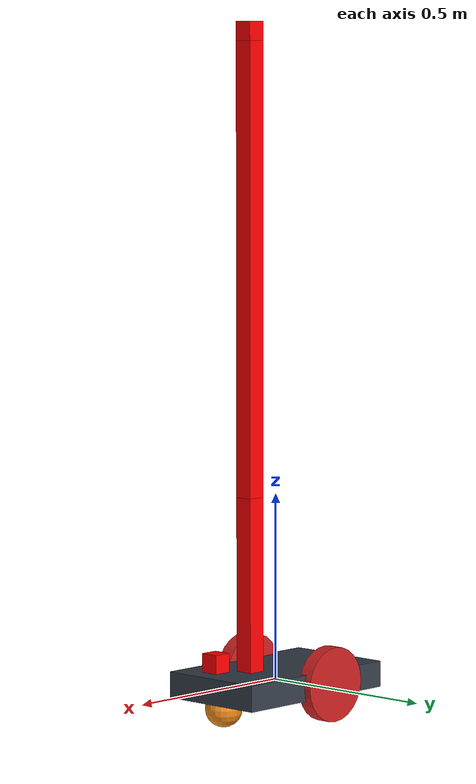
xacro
<?xml version="1.0"?>
<robot xmlns:xacro="http://www.ros.org/wiki/xacro" name="robot_camera_laser">
<xacro:include filename="$(find assignment_1)/urdf/robot2.gazebo"/>

	<xacro:property name="length_wheel" value="0.04" />
	<xacro:property name="radius_wheel" value="0.1" />

	<xacro:macro name="default_inertial" params="mass">
               <inertial>
                       <mass value="${mass}" />
                       <origin rpy="0 1.5707 1.5707" xyz="0 0 0"/>
                       <inertia ixx="0.000526666666667" ixy="0" ixz="0" iyy="0.000526666666667" iyz="0" izz="0.001"/>
               </inertial>
	</xacro:macro>

    <xacro:macro name="wheel_geometry">
		<geometry>
       			<cylinder length="${length_wheel}" radius="${radius_wheel}"/>
     	</geometry>
	</xacro:macro>

  <material name="black">
    <color rgba="0.0 0.0 0.0 1.0"/>
  </material>
  <material name="blue">
    <color rgba="0.203125 0.23828125 0.28515625 1.0"/>
  </material>
  <material name="green">
    <color rgba="0.0 0.8 0.0 1.0"/>
  </material>
  <material name="grey">
    <color rgba="0.2 0.2 0.2 1.0"/>
  </material>
  <material name="orange">
    <color rgba="1.0 0.423529411765 0.0392156862745 1.0"/>
  </material>
  <material name="brown">
    <color rgba="0.870588235294 0.811764705882 0.764705882353 1.0"/>
  </material>
  <material name="red">
    <color rgba="0.80078125 0.12890625 0.1328125 1.0"/>
  </material>
  <material name="white">
    <color rgba="1.0 1.0 1.0 1.0"/>
  </material>

	  <link name="link_chassis">
    <!-- pose and inertial -->
    <pose>0 0 0.1 0 0 0</pose>
    <inertial>
      <mass value="5"/>
      <origin rpy="0 0 0" xyz="0 0 0.1"/>
      <inertia ixx="0.0395416666667" ixy="0" ixz="0" iyy="0.106208333333" iyz="0" izz="0.106208333333"/>
    </inertial>
    <!-- body -->
    <collision name="collision_chassis">
      <geometry>
        <box size="0.5 0.3 0.07"/>
      </geometry>
    </collision>
    <visual>
      <origin rpy="0 0 0" xyz="0 0 0"/>
      <geometry>
        <box size="0.5 0.3 0.07"/>
      </geometry>
      <material name="blue"/>
    </visual>
    <!-- caster front -->
    <collision name="caster_front_collision">
      <origin rpy=" 0 0 0" xyz="0.35 0 -0.05"/>
      <geometry>
        <sphere radius="0.05"/>
      </geometry>
    </collision>
    <visual name="caster_front_visual">
      <origin rpy=" 0 0 0" xyz="0.2 0 -0.05"/>
      <geometry>
        <sphere radius="0.05"/>
      </geometry>
    </visual>

</link>

  <link name="link_right_wheel">
    <xacro:default_inertial mass="0.2"/>
    <collision name="link_right_wheel_collision">
      <origin rpy="0 1.5707 1.5707" xyz="0 0 0"/>
      <xacro:wheel_geometry />
    </collision>
    <visual name="link_right_wheel_visual">
      <origin rpy="0 1.5707 1.5707" xyz="0 0 0"/>
      <xacro:wheel_geometry />
      <material name="red"/>
    </visual>
  </link>

  <link name="link_left_wheel">
    <xacro:default_inertial mass="0.2"/>
    <collision name="link_left_wheel_collision">
      <origin rpy="0 1.5707 1.5707" xyz="0 0 0"/>
      <xacro:wheel_geometry />
    </collision>
    <visual name="link_left_wheel_visual">
      <origin rpy="0 1.5707 1.5707" xyz="0 0 0"/>
      <xacro:wheel_geometry />
      <material name="red"/>
    </visual>
  </link>

  <joint name="joint_right_wheel" type="continuous">
    <origin rpy="0 0 0" xyz="-0.05 -0.15 0"/>
    <child link="link_right_wheel"/>
    <parent link="link_chassis"/>
    <axis rpy="0 0 0" xyz="0 1 0"/>
    <limit effort="10000" velocity="1000"/>
    <joint_properties damping="1.0" friction="1.0"/>
  </joint>

  <joint name="joint_left_wheel" type="continuous">
    <origin rpy="0 0 0" xyz="-0.05 0.15 0"/>
    <child link="link_left_wheel"/>
    <parent link="link_chassis"/>
    <axis rpy="0 0 0" xyz="0 1 0"/>
    <limit effort="10000" velocity="1000"/>
    <joint_properties damping="1.0" friction="1.0"/>
  </joint>

  <link name="link1">
      <collision>
        <origin xyz="0 0 0.25" rpy="0 0 0"/>
        <geometry>
    <box size="0.05 0.05 0.5"/>
        </geometry>
      </collision>
      <visual>
        <origin xyz="0 0 0.25" rpy="0 0 0"/>
        <geometry>
    <box size="0.05 0.05 0.5"/>
        </geometry>
        <material name="grey">
    <color rgba="1 0 0 1"/>
        </material>
      </visual>
      <inertial>
        <mass value="0.025" />
        <origin xyz="0 0 0" rpy="0 0 0"/>
        <inertia ixx="0.000010279" ixy="0" ixz="0" iyy="0.000010279" iyz="0" izz="0.000007225"/>
      </inertial>
  </link>

  <joint name="joint1" type="continuous">
    <origin xyz="0.1 0 0.0" rpy="0 0 0"/>
    <parent link="link_chassis"/>
    <child link="link1"/>
    <axis rpy="0 0 0" xyz="0 0 1"/>
    <limit effort="1000.0" velocity="0.2"/>
    <!--limit lower="-3.14" upper="3.14" effort="1000.0" velocity="0.2"/-->
    <joint_properties damping="1.0" friction="1.0"/>
  </joint>

  <link name="link2">
      <collision>
        <origin xyz="0 0 0.6" rpy="0 0 0"/>
        <geometry>
    <box size="0.05 0.05 1.2"/>
        </geometry>
      </collision>
      <visual>
        <origin xyz="0 0 0.6" rpy="0 0 0"/>
        <geometry>
    <box size="0.05 0.05 1.2"/>
        </geometry>
        <material name="grey">
    <color rgba="1 0 0 1"/>
        </material>
      </visual>
      <inertial>
        <mass value="0.025" />
        <origin xyz="0 0 0" rpy="0 0 0"/>
        <inertia ixx="0.000010279" ixy="0" ixz="0" iyy="0.000010279" iyz="0" izz="0.000007225"/>
      </inertial>
  </link>

  <joint name="joint2" type="revolute">
    <origin xyz="0 0 0.5" rpy="0 0 0"/>
    <parent link="link1"/>
    <child link="link2"/>
    <axis rpy="0 0 0" xyz="0 1 0"/>
      <limit lower="-1.57" upper="1.57" effort="1000.0" velocity="0.2"/>
    <!--limit lower="-3.14" upper="3.14" effort="1000.0" velocity="0.2"/-->
    <joint_properties damping="1.0" friction="1.0"/>
  </joint>

  <link name="camera_link">
	    <collision>
	      <origin xyz="0 0 0.025" rpy="0 0 0"/>
	      <geometry>
		<box size="0.05 0.05 0.05"/>
	      </geometry>
	    </collision>
	    <visual>
	      <origin xyz="0 0 0.025" rpy="0 0 0"/>
	      <geometry>
		<box size="0.05 0.05 0.05"/>
	      </geometry>
	      <material name="red">
		<color rgba="1 0 0 1"/>
	      </material>
	    </visual>
	    <inertial>
	      <mass value="1e-5" />
	      <origin xyz="0 0 0" rpy="0 0 0"/>
	      <inertia ixx="1e-6" ixy="0" ixz="0" iyy="1e-6" iyz="0" izz="1e-6" />
	    </inertial>
  </link>
  <joint name="joint_camera" type="revolute">
      <axis rpy="0 0 0" xyz="0 1 0"/>
      <limit lower="-3.14" upper="3.14" effort="1000.0" velocity="0.2"/>
      <joint_properties damping="1.0" friction="1.0"/>
      <origin xyz="0 0 1.2" rpy="0 0 0"/>
      <parent link="link2"/>
      <child link="camera_link"/>
  </joint>

   <link name="hokuyo_link">
 	    <collision>
 	      <origin xyz="0 0 0.025" rpy="0 0 0"/>
 	      <geometry>
 		<box size="0.05 0.05 0.05"/>
 	      </geometry>
 	    </collision>
 	    <visual>
 	      <origin xyz="0 0 0.025" rpy="0 0 0"/>
 	      <geometry>
 		<box size="0.05 0.05 0.05"/>
 	      </geometry>
 	      <material name="red">
 		<color rgba="1 0 0 1"/>
 	      </material>
 	    </visual>
 	    <inertial>
 	      <mass value="1e-5" />
 	      <origin xyz="0 0 0" rpy="0 0 0"/>
 	      <inertia ixx="1e-6" ixy="0" ixz="0" iyy="1e-6" iyz="0" izz="1e-6" />
 	    </inertial>
   </link>

   <joint name="hokuyo_joint" type="fixed">
 	    <axis xyz="0 1 0" />
 	    <origin xyz="0.23 0 0.05" rpy="0 0 0"/>
 	    <parent link="link_chassis"/>
 	    <child link="hokuyo_link"/>
 	 </joint>

   <!-- Trasmission for camera rotation joint-->
 <transmission name="trans_joint1">
   <type>transmission_interface/SimpleTransmission</type>
   <joint name="joint1">
     <hardwareInterface>hardware_interface/EffortJointInterface</hardwareInterface>
   </joint>
   <actuator name="motor_joint1">
     <hardwareInterface>hardware_interface/EffortJointInterface</hardwareInterface>
     <mechanicalReduction>1</mechanicalReduction>
   </actuator>
 </transmission>

 <transmission name="trans_joint2">
   <type>transmission_interface/SimpleTransmission</type>
   <joint name="joint2">
     <hardwareInterface>hardware_interface/EffortJointInterface</hardwareInterface>
   </joint>
   <actuator name="motor_joint2">
     <hardwareInterface>hardware_interface/EffortJointInterface</hardwareInterface>
     <mechanicalReduction>1</mechanicalReduction>
   </actuator>
 </transmission>

 <transmission name="trans_joint_camera">
   <type>transmission_interface/SimpleTransmission</type>
   <joint name="joint_camera">
     <hardwareInterface>hardware_interface/EffortJointInterface</hardwareInterface>
   </joint>
   <actuator name="motor_joint_camera">
     <hardwareInterface>hardware_interface/EffortJointInterface</hardwareInterface>
     <mechanicalReduction>1</mechanicalReduction>
   </actuator>
 </transmission>

</robot>
